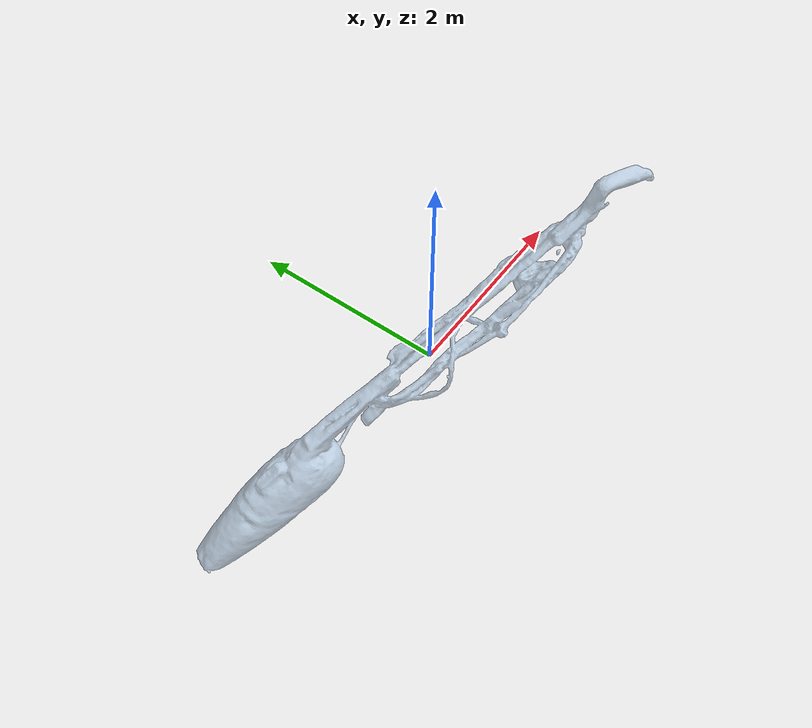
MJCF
<mujoco model="vacuum_top">
    <compiler meshdir="./"/>

    <default>
        <geom friction="0.9 0.5 0.5" rgba="0.7 0.8 0.9 0.7"/>
        <joint damping="0.5"/>
    </default>

    <asset>
        <mesh name="vacuum_top_mesh" file="vacuum_top.obj" scale="1 1 1"/>
    </asset>

    <worldbody>
        <body name="vacuum_top_link">
            <inertial pos="0 0 0" mass="0.1" diaginertia="0.002 0.002 0.002"/>
            <geom name="vacuum_top" type="mesh" mesh="vacuum_top_mesh"
                  pos="0 0 0" quat="1 0 0 0"
                  rgba="0.7 0.8 0.9 0.7"
                  friction="0.9 0.5 0.5"
                  solref="0.02 1"
                  solimp="0.9 0.95 0.001"/>
        </body>
    </worldbody>
</mujoco>
